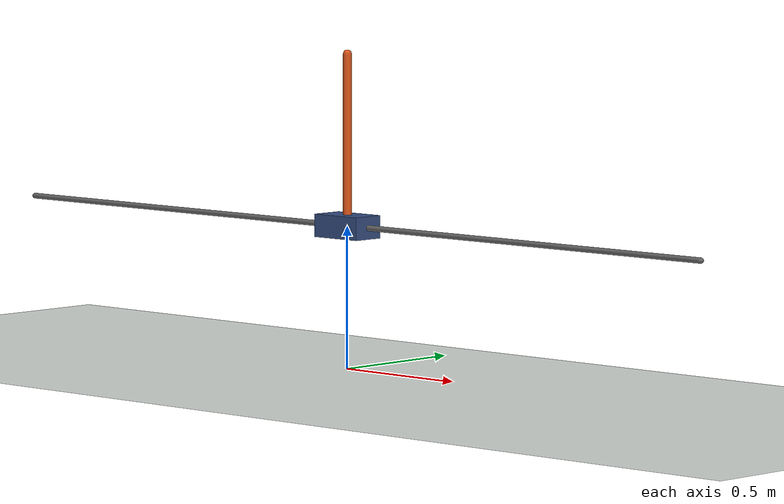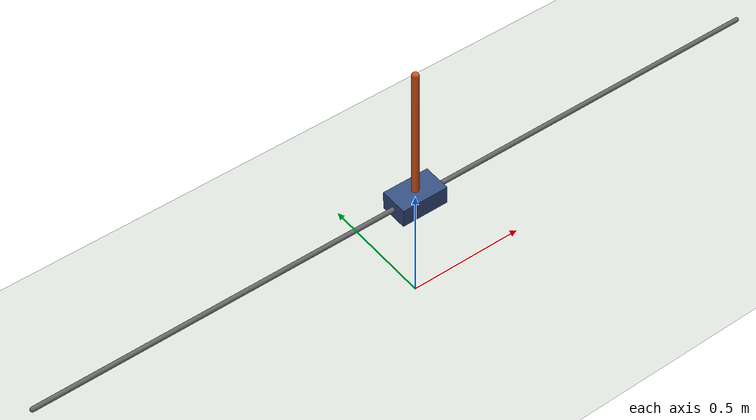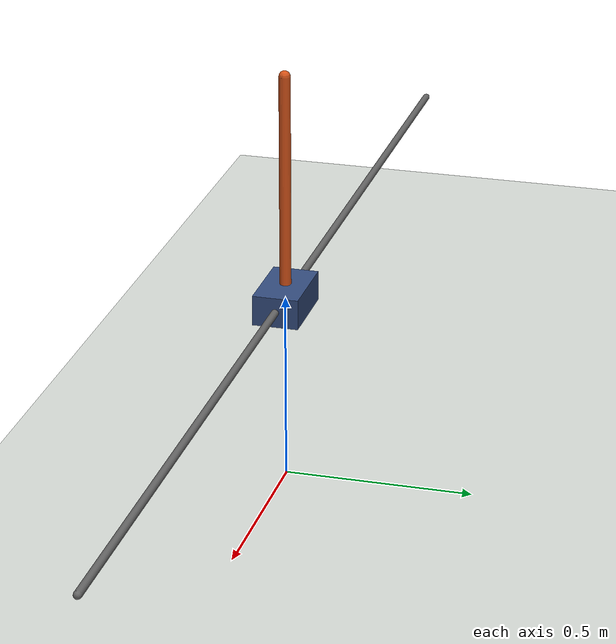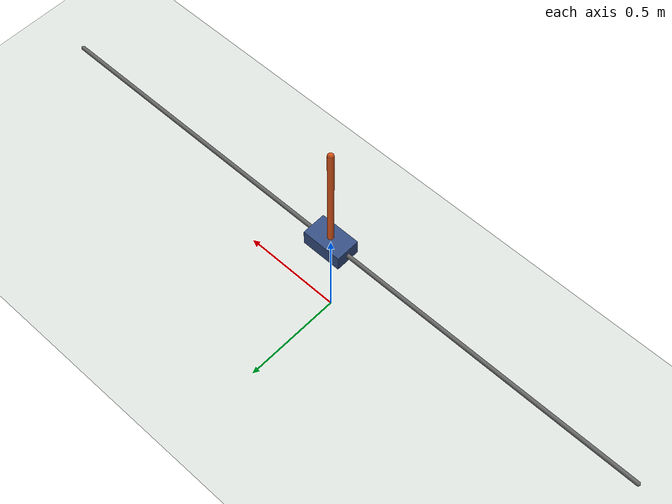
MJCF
<mujoco model="cartpole">
  <compiler angle="radian" autolimits="true"/>
  <option timestep="0.002"/>

  <default>
    <geom contype="0" conaffinity="0"/>
  </default>

  <worldbody>
    <light pos="0 -2 3" dir="0 1 -1.5"/>
    <geom name="floor" type="plane" size="3 1 0.05" pos="0 0 -0.05" rgba=".85 .87 .85 1"/>
    <geom name="rail" type="capsule" fromto="-1.6 0 0.5 1.6 0 0.5" size="0.01" rgba=".4 .4 .4 1"/>

    <body name="cart" pos="0 0 0.5">
      <joint name="slider" type="slide" axis="1 0 0" range="-1.5 1.5" damping="0.1"/>
      <geom name="cart" type="box" size="0.1 0.06 0.04" mass="1.0" rgba=".2 .3 .5 1"/>

      <body name="pole">
        <joint name="hinge" type="hinge" axis="0 1 0" damping="0.002"/>
        <geom name="pole" type="capsule" fromto="0 0 0 0 0 0.6" size="0.015" mass="0.2" rgba=".85 .33 .1 1"/>
        <site name="pole_tip" pos="0 0 0.6" size="0.01"/>
      </body>
    </body>
  </worldbody>

  <actuator>
    <motor name="push" joint="slider" gear="1" ctrlrange="-20 20"/>
  </actuator>

  <sensor>
    <jointpos name="cart_pos" joint="slider"/>
    <jointpos name="pole_angle" joint="hinge"/>
    <jointvel name="cart_vel" joint="slider"/>
    <jointvel name="pole_angvel" joint="hinge"/>
  </sensor>

  <keyframe>
    <key name="tilted" qpos="0 0.15"/>
    <key name="hanging" qpos="0 3.14159265"/>
  </keyframe>
</mujoco>
